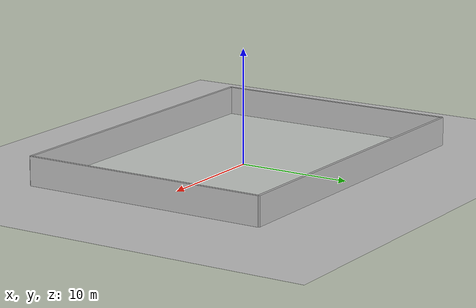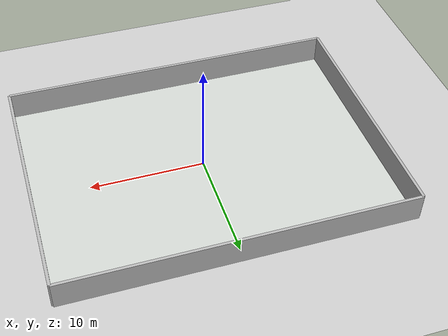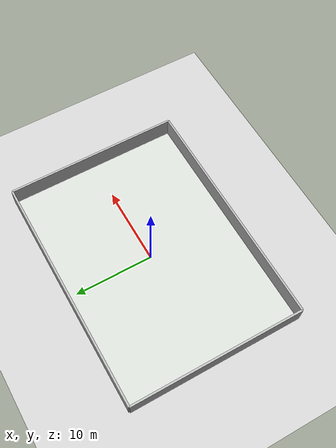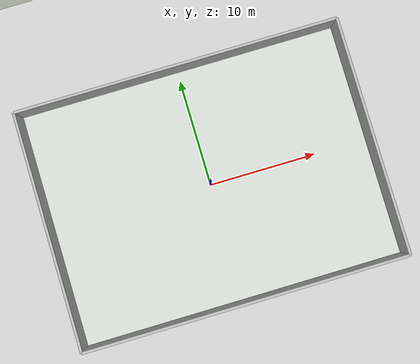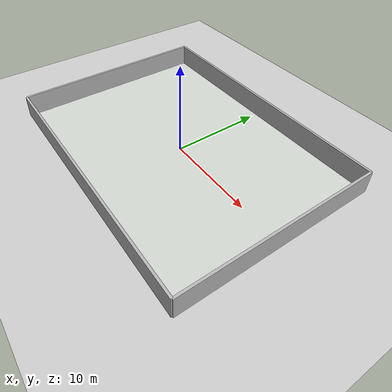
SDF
<?xml version="1.0"?>
<sdf version="1.7">
  <world name="dynamic_nav_mall">
    <include><uri>model://sun</uri></include>
    <include><uri>model://ground_plane</uri></include>
    <model name="mall_floor"><static>true</static><link name="floor"><visual name="visual"><geometry><box><size>30 22 0.03</size></box></geometry><material><diffuse>0.82 0.84 0.82 1</diffuse></material></visual><collision name="collision"><geometry><box><size>30 22 0.03</size></box></geometry></collision></link></model>
    <model name="mall_boundaries"><static>true</static><link name="walls">
      <visual name="north"><pose>0 11 1.25 0 0 0</pose><geometry><box><size>30 0.25 2.5</size></box></geometry></visual><collision name="north_col"><pose>0 11 1.25 0 0 0</pose><geometry><box><size>30 0.25 2.5</size></box></geometry></collision>
      <visual name="south"><pose>0 -11 1.25 0 0 0</pose><geometry><box><size>30 0.25 2.5</size></box></geometry></visual><collision name="south_col"><pose>0 -11 1.25 0 0 0</pose><geometry><box><size>30 0.25 2.5</size></box></geometry></collision>
      <visual name="east"><pose>15 0 1.25 0 0 0</pose><geometry><box><size>0.25 22 2.5</size></box></geometry></visual><collision name="east_col"><pose>15 0 1.25 0 0 0</pose><geometry><box><size>0.25 22 2.5</size></box></geometry></collision>
      <visual name="west"><pose>-15 0 1.25 0 0 0</pose><geometry><box><size>0.25 22 2.5</size></box></geometry></visual><collision name="west_col"><pose>-15 0 1.25 0 0 0</pose><geometry><box><size>0.25 22 2.5</size></box></geometry></collision>
    </link></model>
  </world>
</sdf>
